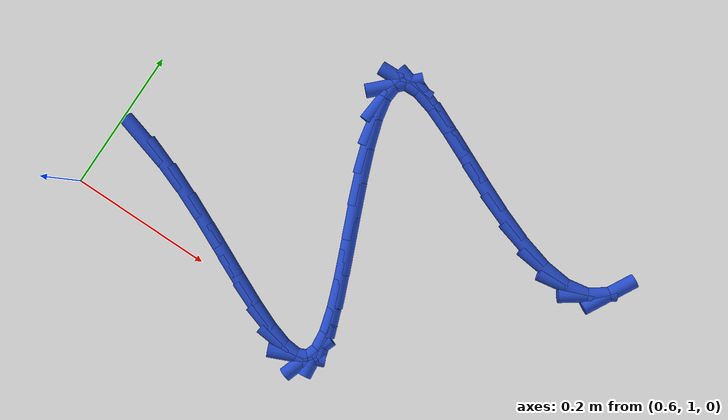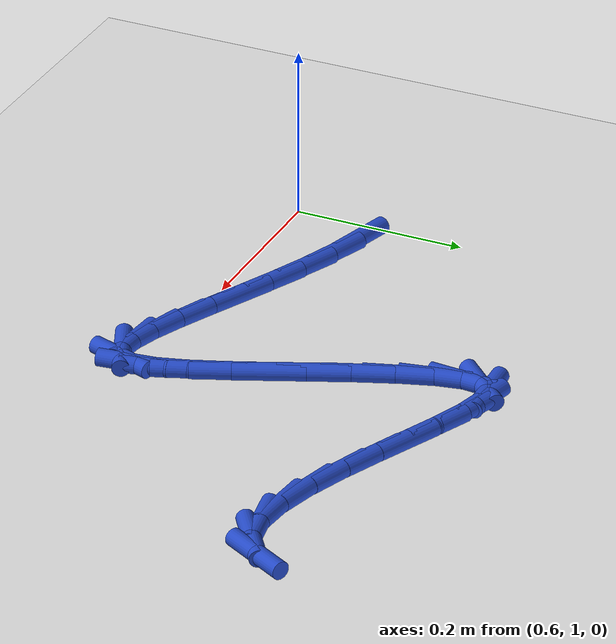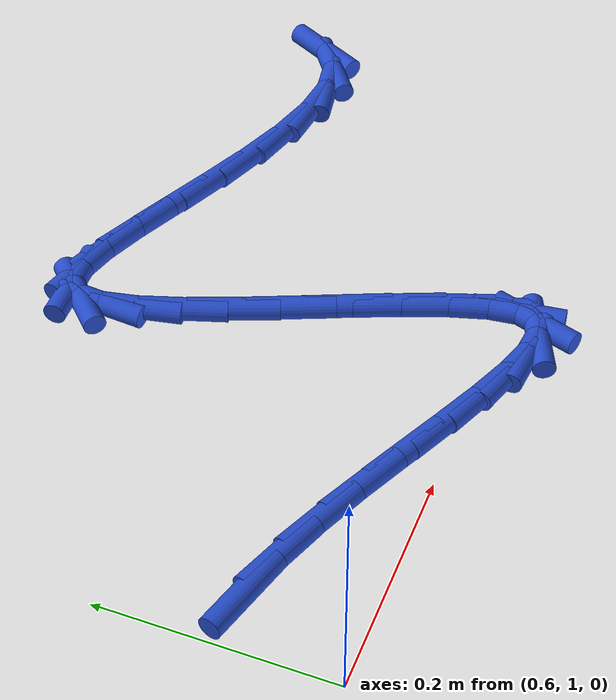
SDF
<sdf version="1.6">
 <world name="default">
  <model name="ground_plane">
   <static>1</static>
   <link name="link">
    <collision name="collision">
     <geometry><plane><normal>0 0 1</normal><size>100 100</size></plane></geometry>
     <surface><friction><ode><mu>100</mu><mu2>50</mu2></ode></friction></surface>
    </collision>
    <visual name="visual">
     <cast_shadows>0</cast_shadows>
     <geometry><plane><normal>0 0 1</normal><size>100 100</size></plane></geometry>
     <material>
      <script><uri>file://media/materials/scripts/gazebo.material</uri><name>Gazebo/WhiteGlow</name></script>
     </material>
    </visual>
   </link>
  </model>
  <model name="line">
   <link name="link_38">
    <pose>0.6435674485802125 1.0956235916075074 0.01 0 1.57 -0.2732126726696202</pose>
    <collision name="collision">
     <geometry><cylinder><radius>0.01</radius><length>0.08</length></cylinder></geometry>
    </collision>
    <visual name="visual">
     <material>
      <script><name>Gazebo/Blue</name><uri>file://media/materials/scripts/gazebo.material</uri></script>
     </material>
     <geometry><cylinder><radius>0.01</radius><length>0.08</length></cylinder></geometry>
    </visual>
   </link>
   <link name="link_39">
    <pose>0.6852396212715328 1.0839462164859146 0.01 0 1.57 -0.3540582654534181</pose>
    <collision name="collision">
     <geometry><cylinder><radius>0.01</radius><length>0.08</length></cylinder></geometry>
    </collision>
    <visual name="visual">
     <material>
      <script><name>Gazebo/Blue</name><uri>file://media/materials/scripts/gazebo.material</uri></script>
     </material>
     <geometry><cylinder><radius>0.01</radius><length>0.08</length></cylinder></geometry>
    </visual>
   </link>
   <link name="link_40">
    <pose>0.7284996166941375 1.067955835961284 0.01 0 1.57 -0.4049444694214107</pose>
    <collision name="collision">
     <geometry><cylinder><radius>0.01</radius><length>0.08</length></cylinder></geometry>
    </collision>
    <visual name="visual">
     <material>
      <script><name>Gazebo/Blue</name><uri>file://media/materials/scripts/gazebo.material</uri></script>
     </material>
     <geometry><cylinder><radius>0.01</radius><length>0.08</length></cylinder></geometry>
    </visual>
   </link>
   <link name="link_41">
    <pose>0.7721880594515192 1.0492294931800166 0.01 0 1.57 -0.4335340104082877</pose>
    <collision name="collision">
     <geometry><cylinder><radius>0.01</radius><length>0.08</length></cylinder></geometry>
    </collision>
    <visual name="visual">
     <material>
      <script><name>Gazebo/Blue</name><uri>file://media/materials/scripts/gazebo.material</uri></script>
     </material>
     <geometry><cylinder><radius>0.01</radius><length>0.08</length></cylinder></geometry>
    </visual>
   </link>
   <link name="link_42">
    <pose>0.8151455741471703 1.0293442312885126 0.01 0 1.57 -0.44265755465520296</pose>
    <collision name="collision">
     <geometry><cylinder><radius>0.01</radius><length>0.08</length></cylinder></geometry>
    </collision>
    <visual name="visual">
     <material>
      <script><name>Gazebo/Blue</name><uri>file://media/materials/scripts/gazebo.material</uri></script>
     </material>
     <geometry><cylinder><radius>0.01</radius><length>0.08</length></cylinder></geometry>
    </visual>
   </link>
   <link name="link_43">
    <pose>0.8562127853845827 1.0098770934331733 0.01 0 1.57 -0.4307892814029892</pose>
    <collision name="collision">
     <geometry><cylinder><radius>0.01</radius><length>0.08</length></cylinder></geometry>
    </collision>
    <visual name="visual">
     <material>
      <script><name>Gazebo/Blue</name><uri>file://media/materials/scripts/gazebo.material</uri></script>
     </material>
     <geometry><cylinder><radius>0.01</radius><length>0.08</length></cylinder></geometry>
    </visual>
   </link>
   <link name="link_44">
    <pose>0.8942303177672484 0.9924051227603986 0.01 0 1.57 -0.3900662727399321</pose>
    <collision name="collision">
     <geometry><cylinder><radius>0.01</radius><length>0.08</length></cylinder></geometry>
    </collision>
    <visual name="visual">
     <material>
      <script><name>Gazebo/Blue</name><uri>file://media/materials/scripts/gazebo.material</uri></script>
     </material>
     <geometry><cylinder><radius>0.01</radius><length>0.08</length></cylinder></geometry>
    </visual>
   </link>
   <link name="link_45">
    <pose>0.9280387958986593 0.9785053624165888 0.01 0 1.57 -0.29849002512948114</pose>
    <collision name="collision">
     <geometry><cylinder><radius>0.01</radius><length>0.08</length></cylinder></geometry>
    </collision>
    <visual name="visual">
     <material>
      <script><name>Gazebo/Blue</name><uri>file://media/materials/scripts/gazebo.material</uri></script>
     </material>
     <geometry><cylinder><radius>0.01</radius><length>0.08</length></cylinder></geometry>
    </visual>
   </link>
   <link name="link_46">
    <pose>0.9564788443823079 0.9697548555481451 0.01 0 1.57 -0.09211660835350824</pose>
    <collision name="collision">
     <geometry><cylinder><radius>0.01</radius><length>0.08</length></cylinder></geometry>
    </collision>
    <visual name="visual">
     <material>
      <script><name>Gazebo/Blue</name><uri>file://media/materials/scripts/gazebo.material</uri></script>
     </material>
     <geometry><cylinder><radius>0.01</radius><length>0.08</length></cylinder></geometry>
    </visual>
   </link>
   <link name="link_47">
    <pose>0.9783910878216858 0.9677306453014669 0.01 0 1.57 0.41569017660578866</pose>
    <collision name="collision">
     <geometry><cylinder><radius>0.01</radius><length>0.08</length></cylinder></geometry>
    </collision>
    <visual name="visual">
     <material>
      <script><name>Gazebo/Blue</name><uri>file://media/materials/scripts/gazebo.material</uri></script>
     </material>
     <geometry><cylinder><radius>0.01</radius><length>0.08</length></cylinder></geometry>
    </visual>
   </link>
   <link name="link_48">
    <pose>0.9926161508202862 0.9740097748229557 0.01 0 1.57 1.2441062371827094</pose>
    <collision name="collision">
     <geometry><cylinder><radius>0.01</radius><length>0.08</length></cylinder></geometry>
    </collision>
    <visual name="visual">
     <material>
      <script><name>Gazebo/Blue</name><uri>file://media/materials/scripts/gazebo.material</uri></script>
     </material>
     <geometry><cylinder><radius>0.01</radius><length>0.08</length></cylinder></geometry>
    </visual>
   </link>
   <link name="link_49">
    <pose>0.998063309506109 0.990086113370722 0.01 0 1.57 -1.4553379725789222</pose>
    <collision name="collision">
     <geometry><cylinder><radius>0.01</radius><length>0.08</length></cylinder></geometry>
    </collision>
    <visual name="visual">
     <material>
      <script><name>Gazebo/Blue</name><uri>file://media/materials/scripts/gazebo.material</uri></script>
     </material>
     <geometry><cylinder><radius>0.01</radius><length>0.08</length></cylinder></geometry>
    </visual>
   </link>
   <link name="link_50">
    <pose>0.9950933429816454 1.015694980088876 0.01 0 1.57 -1.2881413071022747</pose>
    <collision name="collision">
     <geometry><cylinder><radius>0.01</radius><length>0.08</length></cylinder></geometry>
    </collision>
    <visual name="visual">
     <material>
      <script><name>Gazebo/Blue</name><uri>file://media/materials/scripts/gazebo.material</uri></script>
     </material>
     <geometry><cylinder><radius>0.01</radius><length>0.08</length></cylinder></geometry>
    </visual>
   </link>
   <link name="link_51">
    <pose>0.9854510553352902 1.048894896113171 0.01 0 1.57 -1.212677871284093</pose>
    <collision name="collision">
     <geometry><cylinder><radius>0.01</radius><length>0.08</length></cylinder></geometry>
    </collision>
    <visual name="visual">
     <material>
      <script><name>Gazebo/Blue</name><uri>file://media/materials/scripts/gazebo.material</uri></script>
     </material>
     <geometry><cylinder><radius>0.01</radius><length>0.08</length></cylinder></geometry>
    </visual>
   </link>
   <link name="link_52">
    <pose>0.9709363969944836 1.0876775707281172 0.01 0 1.57 -1.1772476468073936</pose>
    <collision name="collision">
     <geometry><cylinder><radius>0.01</radius><length>0.08</length></cylinder></geometry>
    </collision>
    <visual name="visual">
     <material>
      <script><name>Gazebo/Blue</name><uri>file://media/materials/scripts/gazebo.material</uri></script>
     </material>
     <geometry><cylinder><radius>0.01</radius><length>0.08</length></cylinder></geometry>
    </visual>
   </link>
   <link name="link_53">
    <pose>0.9533493183866659 1.1300347132182236 0.01 0 1.57 -1.1652263763859736</pose>
    <collision name="collision">
     <geometry><cylinder><radius>0.01</radius><length>0.08</length></cylinder></geometry>
    </collision>
    <visual name="visual">
     <material>
      <script><name>Gazebo/Blue</name><uri>file://media/materials/scripts/gazebo.material</uri></script>
     </material>
     <geometry><cylinder><radius>0.01</radius><length>0.08</length></cylinder></geometry>
    </visual>
   </link>
   <link name="link_54">
    <pose>0.9344897699392769 1.1739580328679984 0.01 0 1.57 -1.1718013885289402</pose>
    <collision name="collision">
     <geometry><cylinder><radius>0.01</radius><length>0.08</length></cylinder></geometry>
    </collision>
    <visual name="visual">
     <material>
      <script><name>Gazebo/Blue</name><uri>file://media/materials/scripts/gazebo.material</uri></script>
     </material>
     <geometry><cylinder><radius>0.01</radius><length>0.08</length></cylinder></geometry>
    </visual>
   </link>
   <link name="link_55">
    <pose>0.916157702079757 1.2174392389619513 0.01 0 1.57 -1.1988847422950504</pose>
    <collision name="collision">
     <geometry><cylinder><radius>0.01</radius><length>0.08</length></cylinder></geometry>
    </collision>
    <visual name="visual">
     <material>
      <script><name>Gazebo/Blue</name><uri>file://media/materials/scripts/gazebo.material</uri></script>
     </material>
     <geometry><cylinder><radius>0.01</radius><length>0.08</length></cylinder></geometry>
    </visual>
   </link>
   <link name="link_56">
    <pose>0.9001530652355461 1.258470040784591 0.01 0 1.57 -1.2567790911932688</pose>
    <collision name="collision">
     <geometry><cylinder><radius>0.01</radius><length>0.08</length></cylinder></geometry>
    </collision>
    <visual name="visual">
     <material>
      <script><name>Gazebo/Blue</name><uri>file://media/materials/scripts/gazebo.material</uri></script>
     </material>
     <geometry><cylinder><radius>0.01</radius><length>0.08</length></cylinder></geometry>
    </visual>
   </link>
   <link name="link_57">
    <pose>0.8882758098340845 1.2950421476204261 0.01 0 1.57 -1.3756727059972798</pose>
    <collision name="collision">
     <geometry><cylinder><radius>0.01</radius><length>0.08</length></cylinder></geometry>
    </collision>
    <visual name="visual">
     <material>
      <script><name>Gazebo/Blue</name><uri>file://media/materials/scripts/gazebo.material</uri></script>
     </material>
     <geometry><cylinder><radius>0.01</radius><length>0.08</length></cylinder></geometry>
    </visual>
   </link>
   <link name="link_58">
    <pose>0.8823258863028123 1.3251472687539665 0.01 0 1.57 1.488808935050676</pose>
    <collision name="collision">
     <geometry><cylinder><radius>0.01</radius><length>0.08</length></cylinder></geometry>
    </collision>
    <visual name="visual">
     <material>
      <script><name>Gazebo/Blue</name><uri>file://media/materials/scripts/gazebo.material</uri></script>
     </material>
     <geometry><cylinder><radius>0.01</radius><length>0.08</length></cylinder></geometry>
    </visual>
   </link>
   <link name="link_59">
    <pose>0.8841032450691694 1.3467771134697204 0.01 0 1.57 0.783674373571665</pose>
    <collision name="collision">
     <geometry><cylinder><radius>0.01</radius><length>0.08</length></cylinder></geometry>
    </collision>
    <visual name="visual">
     <material>
      <script><name>Gazebo/Blue</name><uri>file://media/materials/scripts/gazebo.material</uri></script>
     </material>
     <geometry><cylinder><radius>0.01</radius><length>0.08</length></cylinder></geometry>
    </visual>
   </link>
   <link name="link_60">
    <pose>0.8953536329190005 1.3579887814179492 0.01 0 1.57 0.03589237560926918</pose>
    <collision name="collision">
     <geometry><cylinder><radius>0.01</radius><length>0.08</length></cylinder></geometry>
    </collision>
    <visual name="visual">
     <material>
      <script><name>Gazebo/Blue</name><uri>file://media/materials/scripts/gazebo.material</uri></script>
     </material>
     <geometry><cylinder><radius>0.01</radius><length>0.08</length></cylinder></geometry>
    </visual>
   </link>
   <link name="link_61">
    <pose>0.9162481033970835 1.3587390558116663 0.01 0 1.57 -0.2570705202658405</pose>
    <collision name="collision">
     <geometry><cylinder><radius>0.01</radius><length>0.08</length></cylinder></geometry>
    </collision>
    <visual name="visual">
     <material>
      <script><name>Gazebo/Blue</name><uri>file://media/materials/scripts/gazebo.material</uri></script>
     </material>
     <geometry><cylinder><radius>0.01</radius><length>0.08</length></cylinder></geometry>
    </visual>
   </link>
   <link name="link_62">
    <pose>0.9451758542617804 1.3511343208530635 0.01 0 1.57 -0.37157371935572914</pose>
    <collision name="collision">
     <geometry><cylinder><radius>0.01</radius><length>0.08</length></cylinder></geometry>
    </collision>
    <visual name="visual">
     <material>
      <script><name>Gazebo/Blue</name><uri>file://media/materials/scripts/gazebo.material</uri></script>
     </material>
     <geometry><cylinder><radius>0.01</radius><length>0.08</length></cylinder></geometry>
    </visual>
   </link>
   <link name="link_63">
    <pose>0.9804302486156251 1.3373965740686726 0.01 0 1.57 -0.41669043497743213</pose>
    <collision name="collision">
     <geometry><cylinder><radius>0.01</radius><length>0.08</length></cylinder></geometry>
    </collision>
    <visual name="visual">
     <material>
      <script><name>Gazebo/Blue</name><uri>file://media/materials/scripts/gazebo.material</uri></script>
     </material>
     <geometry><cylinder><radius>0.01</radius><length>0.08</length></cylinder></geometry>
    </visual>
   </link>
   <link name="link_64">
    <pose>1.0203046495611527 1.3197478129850277 0.01 0 1.57 -0.424471354114581</pose>
    <collision name="collision">
     <geometry><cylinder><radius>0.01</radius><length>0.08</length></cylinder></geometry>
    </collision>
    <visual name="visual">
     <material>
      <script><name>Gazebo/Blue</name><uri>file://media/materials/scripts/gazebo.material</uri></script>
     </material>
     <geometry><cylinder><radius>0.01</radius><length>0.08</length></cylinder></geometry>
    </visual>
   </link>
   <link name="link_65">
    <pose>1.0630924202008973 1.3004100351286614 0.01 0 1.57 -0.40393143059395986</pose>
    <collision name="collision">
     <geometry><cylinder><radius>0.01</radius><length>0.08</length></cylinder></geometry>
    </collision>
    <visual name="visual">
     <material>
      <script><name>Gazebo/Blue</name><uri>file://media/materials/scripts/gazebo.material</uri></script>
     </material>
     <geometry><cylinder><radius>0.01</radius><length>0.08</length></cylinder></geometry>
    </visual>
   </link>
   <link name="link_66">
    <pose>1.1070869236373935 1.2816052380261067 0.01 0 1.57 -0.35350635505028494</pose>
    <collision name="collision">
     <geometry><cylinder><radius>0.01</radius><length>0.08</length></cylinder></geometry>
    </collision>
    <visual name="visual">
     <material>
      <script><name>Gazebo/Blue</name><uri>file://media/materials/scripts/gazebo.material</uri></script>
     </material>
     <geometry><cylinder><radius>0.01</radius><length>0.08</length></cylinder></geometry>
    </visual>
   </link>
   <link name="link_67">
    <pose>1.1505815229731746 1.2655554192038965 0.01 0 1.57 -0.2620195012930942</pose>
    <collision name="collision">
     <geometry><cylinder><radius>0.01</radius><length>0.08</length></cylinder></geometry>
    </collision>
    <visual name="visual">
     <material>
      <script><name>Gazebo/Blue</name><uri>file://media/materials/scripts/gazebo.material</uri></script>
     </material>
     <geometry><cylinder><radius>0.01</radius><length>0.08</length></cylinder></geometry>
    </visual>
   </link>
   <link name="link_68">
    <pose>1.1918695813107774 1.254482576188563 0.01 0 1.57 -0.10328022176700588</pose>
    <collision name="collision">
     <geometry><cylinder><radius>0.01</radius><length>0.08</length></cylinder></geometry>
    </collision>
    <visual name="visual">
     <material>
      <script><name>Gazebo/Blue</name><uri>file://media/materials/scripts/gazebo.material</uri></script>
     </material>
     <geometry><cylinder><radius>0.01</radius><length>0.08</length></cylinder></geometry>
    </visual>
   </link>
   <link name="link_69">
    <pose>1.2292444617527345 1.2506087065066405 0.01 0 1.57 0.17293901825273011</pose>
    <collision name="collision">
     <geometry><cylinder><radius>0.01</radius><length>0.08</length></cylinder></geometry>
    </collision>
    <visual name="visual">
     <material>
      <script><name>Gazebo/Blue</name><uri>file://media/materials/scripts/gazebo.material</uri></script>
     </material>
     <geometry><cylinder><radius>0.01</radius><length>0.08</length></cylinder></geometry>
    </visual>
   </link>
   <link name="link_70">
    <pose>1.2609995274015797 1.2561558076846602 0.01 0 1.57 0.6131953967773918</pose>
    <collision name="collision">
     <geometry><cylinder><radius>0.01</radius><length>0.08</length></cylinder></geometry>
    </collision>
    <visual name="visual">
     <material>
      <script><name>Gazebo/Blue</name><uri>file://media/materials/scripts/gazebo.material</uri></script>
     </material>
     <geometry><cylinder><radius>0.01</radius><length>0.08</length></cylinder></geometry>
    </visual>
   </link>
   <link name="link_71">
    <pose>1.2854281413598494 1.2733458772491562 0.01 0 1.57 1.0797481965567843</pose>
    <collision name="collision">
     <geometry><cylinder><radius>0.01</radius><length>0.08</length></cylinder></geometry>
    </collision>
    <visual name="visual">
     <material>
      <script><name>Gazebo/Blue</name><uri>file://media/materials/scripts/gazebo.material</uri></script>
     </material>
     <geometry><cylinder><radius>0.01</radius><length>0.08</length></cylinder></geometry>
    </visual>
   </link>
  </model>
 </world>
</sdf>
